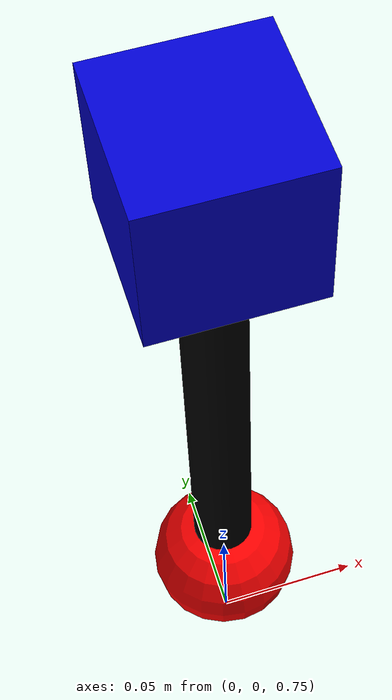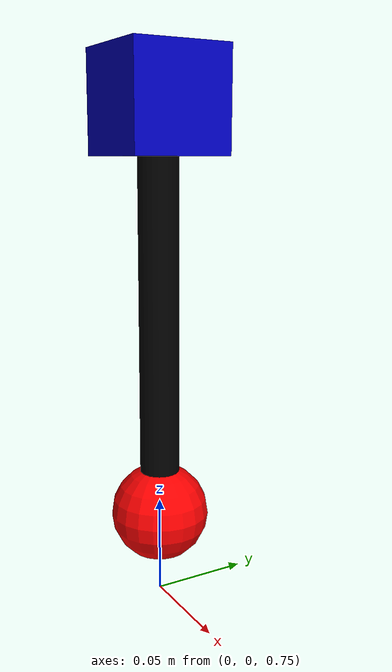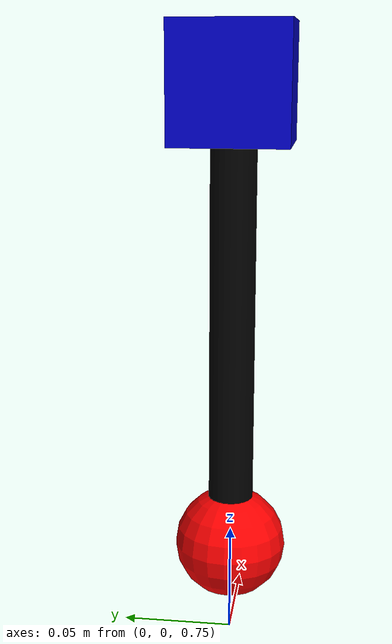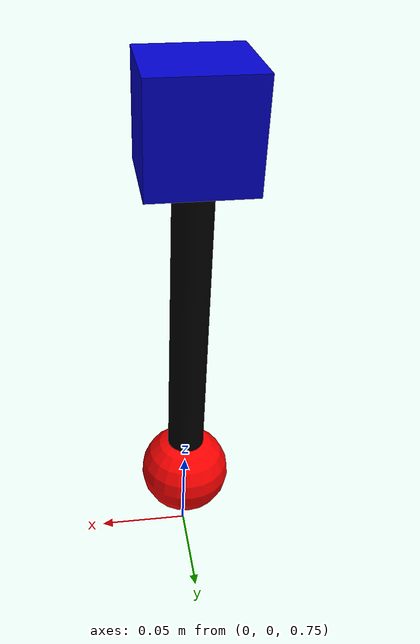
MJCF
<mujoco model="cart pole scene">

    <include file="cart_pole.xml"/>

    <statistic center="0 0 1" extent="0.55"/>

    <visual>
        <headlight diffuse="0.6 0.6 0.6" ambient="0.1 0.1 0.1" specular="0 0 0"/>
        <rgba haze="0.15 0.25 0.35 1"/>
        <global azimuth="-90" elevation="-20"/>
    </visual>

    <asset>
        <texture type="skybox" builtin="gradient" rgb1="0.3 0.5 0.7" rgb2="0 0 0" width="512" height="3072"/>
        <texture type="2d" name="groundplane" builtin="checker" mark="edge" rgb1="0.2 0.3 0.4" rgb2="0.1 0.2 0.3"
            markrgb="0.8 0.8 0.8" width="300" height="300"/>
        <material name="groundplane" texture="groundplane" texuniform="true" texrepeat="5 5" reflectance="0.2"/>
    </asset>

    <worldbody>
        <light pos="0 0 1.5" dir="0 0 -1" directional="true"/>
        <geom name="floor" size="0 0 0.05" type="plane" material="groundplane"/>
    </worldbody>

</mujoco>

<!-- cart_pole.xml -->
<mujoco model="cart_pole">
  <compiler angle="radian" inertiafromgeom="true"/>
  <option timestep="0.001" integrator="implicitfast"></option>

  <worldbody>
    <body name="cart" pos="0 0 1">
      <inertial pos="0 0 0" mass="0.466"/>
      <joint name="cart_joint" pos="0 0 0" axis="1 0 0" type="slide" limited="false" frictionloss="0.0408"/>
      <geom size="0.025 0.025 0.025" pos="0 0 0" type="box" rgba="0 0 0.8 1"/>
      <body name="pole" pos="0 0 0">
        <inertial pos="0 0 -0.1005" mass="0.06"/>
        <joint name="pole_joint" pos="0 0 0" axis="0 1 0" limited="false" frictionloss="0.0020"/>
        <geom size="0.01 0.1005" pos="0 0 -0.1005" type="cylinder" rgba="0 0 0 1"/>
        <body name="sphere" pos="0 0 -0.206">
          <inertial pos="0 0 0" mass="0.012"/>
          <geom size="0.025" pos="0 0 0" rgba="1 0 0 1"/>
        </body>
      </body>
    </body>
  </worldbody>

  <actuator>
    <motor joint="cart_joint"/>
    <motor joint="pole_joint"/>
  </actuator>

</mujoco>
